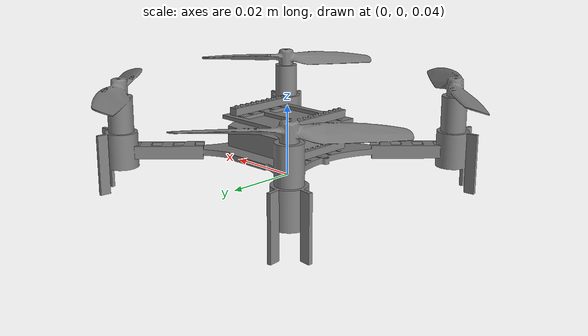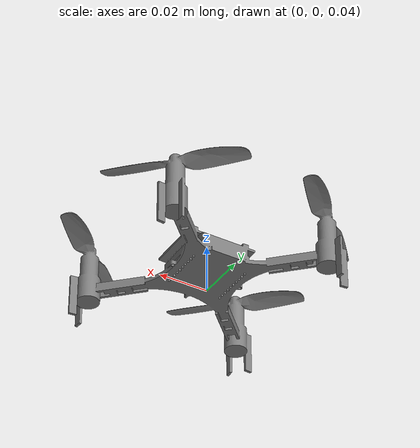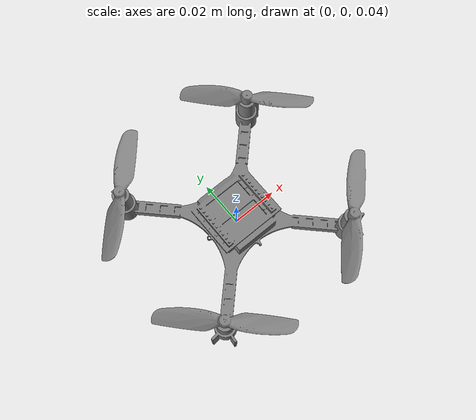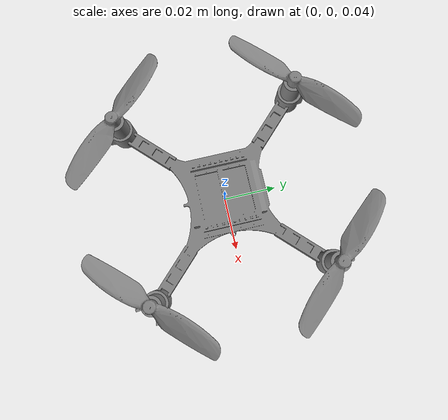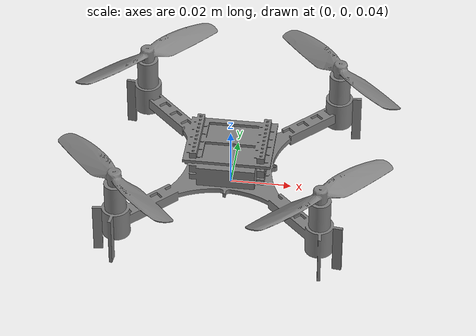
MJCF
<mujoco model="cf2x">
  <compiler inertiafromgeom="false" meshdir="assets" autolimits="true" />

  <asset>
    <mesh name="cf2x_fused" file="cf2x/cf2xT_fused.stl" scale="0.001 0.001 0.001"/>
  </asset>

  <default>
    <default class="cf2x">
      <default class="visual">
        <geom group="2" type="mesh" contype="0" conaffinity="0" />
      </default>
      <default class="collision">
        <geom group="3" condim="1" />
      </default>
      <site group="5" />
    </default>
  </default>

  <worldbody>
    <body name="drone" pos="0 0 0.05" childclass="cf2x">
      <site name="CoM" />
      <inertial pos="0.0 0.0 0.0" mass="0.027" diaginertia="2.3951e-5 2.3951e-5 3.2347e-5" />

      <geom mesh="cf2x_fused" material="" class="visual" />

      <geom name="col_sphere" type="sphere" size="0.0725" pos="0 0 0.01" class="collision" contype="1" conaffinity="1" />
      <geom name="col_box" type="box" size="0.0575 0.0575 0.02" class="collision" rgba="0.5 0.5 0.5 0" contype="0" conaffinity="0" />

      <site name="motor0" pos="0.0325 -0.0325 0.0" />
      <site name="motor1" pos="-0.0325 -0.0325 0.0" />
      <site name="motor2" pos="-0.0325 0.0325 0.0" />
      <site name="motor3" pos="0.0325 0.0325 0.0" />

      <camera name="track_cam" pos="-1 0 .5" xyaxes="0 -1 0 1 0 2" mode="trackcom" />
      <camera name="fpv_cam" pos="0.03 0 0" euler="0 -90 -90" fovy="70" resolution="640 480" />
    </body>
  </worldbody>

</mujoco>
